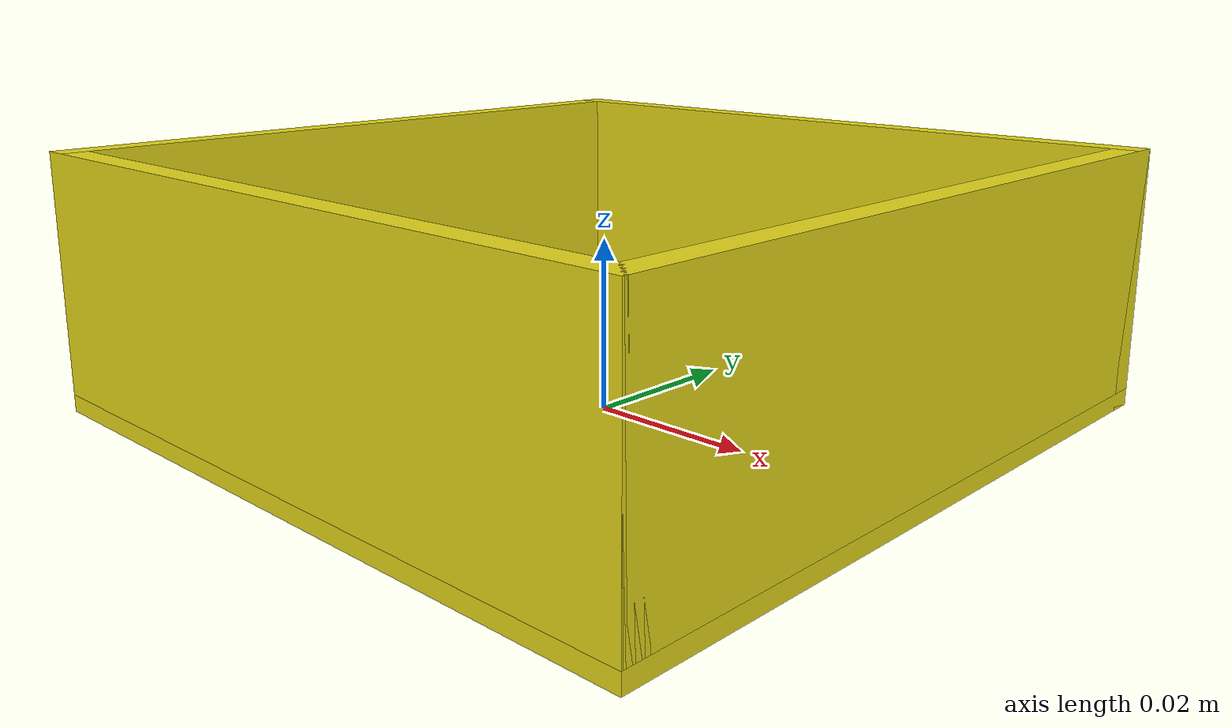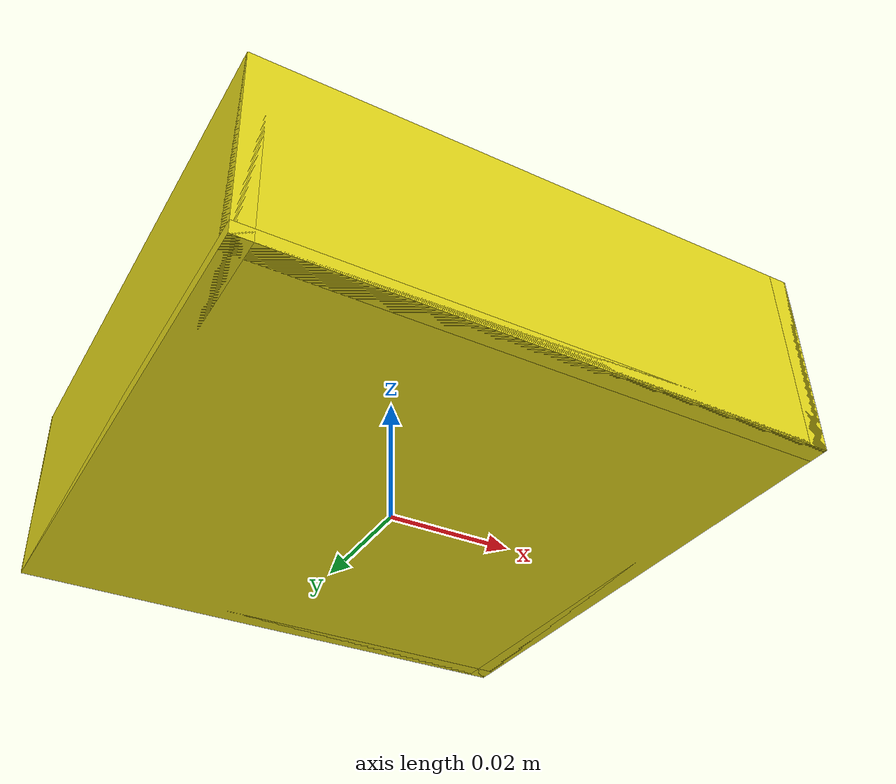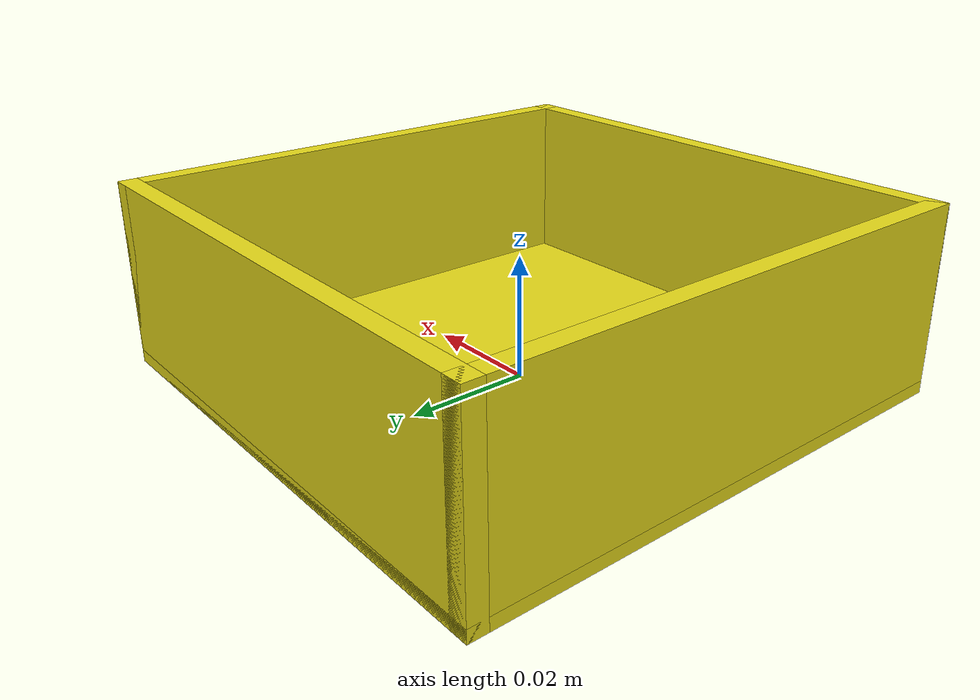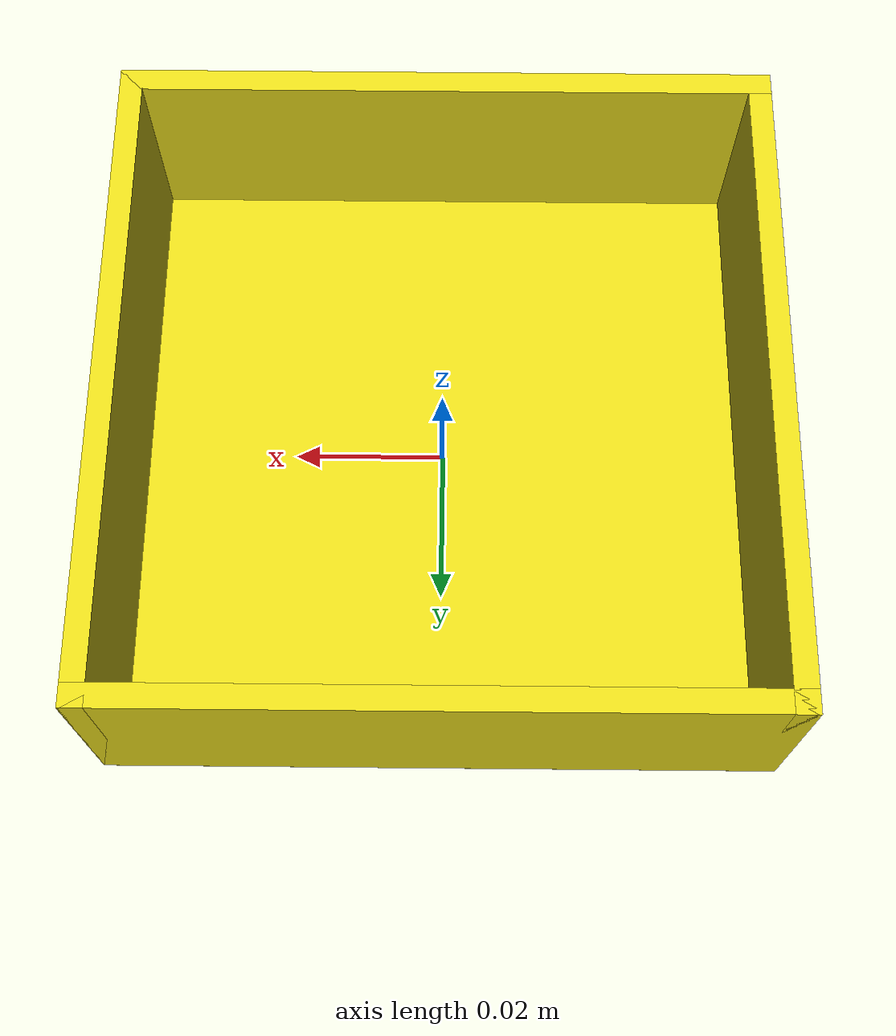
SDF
<?xml version="1.0" ?>
<sdf version="1.9">
  <model name="yellow_bin">
    <static>true</static>
    <link name="link">
      <visual name="floor">
        <pose>0 0 0.001 0 0 0</pose>
        <geometry>
          <box>
            <size>0.086 0.086 0.002</size>
          </box>
        </geometry>
        <material>
          <ambient>0.55 0.50 0.05 1</ambient>
          <diffuse>0.90 0.85 0.10 1</diffuse>
        </material>
      </visual>
      <visual name="wn">
        <pose>0 0.0415 0.015 0 0 0</pose>
        <geometry>
          <box>
            <size>0.086 0.003 0.03</size>
          </box>
        </geometry>
        <material>
          <ambient>0.55 0.50 0.05 1</ambient>
          <diffuse>0.90 0.85 0.10 1</diffuse>
        </material>
      </visual>
      <visual name="ws">
        <pose>0 -0.0415 0.015 0 0 0</pose>
        <geometry>
          <box>
            <size>0.086 0.003 0.03</size>
          </box>
        </geometry>
        <material>
          <ambient>0.55 0.50 0.05 1</ambient>
          <diffuse>0.90 0.85 0.10 1</diffuse>
        </material>
      </visual>
      <visual name="we">
        <pose>0.0415 0 0.015 0 0 0</pose>
        <geometry>
          <box>
            <size>0.003 0.086 0.03</size>
          </box>
        </geometry>
        <material>
          <ambient>0.55 0.50 0.05 1</ambient>
          <diffuse>0.90 0.85 0.10 1</diffuse>
        </material>
      </visual>
      <visual name="ww">
        <pose>-0.0415 0 0.015 0 0 0</pose>
        <geometry>
          <box>
            <size>0.003 0.086 0.03</size>
          </box>
        </geometry>
        <material>
          <ambient>0.55 0.50 0.05 1</ambient>
          <diffuse>0.90 0.85 0.10 1</diffuse>
        </material>
      </visual>
      <collision name="floor_c">
        <pose>0 0 0.001 0 0 0</pose>
        <geometry>
          <box>
            <size>0.086 0.086 0.002</size>
          </box>
        </geometry>
      </collision>
      <collision name="wn_c">
        <pose>0 0.0415 0.015 0 0 0</pose>
        <geometry>
          <box>
            <size>0.086 0.003 0.03</size>
          </box>
        </geometry>
      </collision>
      <collision name="ws_c">
        <pose>0 -0.0415 0.015 0 0 0</pose>
        <geometry>
          <box>
            <size>0.086 0.003 0.03</size>
          </box>
        </geometry>
      </collision>
      <collision name="we_c">
        <pose>0.0415 0 0.015 0 0 0</pose>
        <geometry>
          <box>
            <size>0.003 0.086 0.03</size>
          </box>
        </geometry>
      </collision>
      <collision name="ww_c">
        <pose>-0.0415 0 0.015 0 0 0</pose>
        <geometry>
          <box>
            <size>0.003 0.086 0.03</size>
          </box>
        </geometry>
      </collision>
    </link>
  </model>
</sdf>
